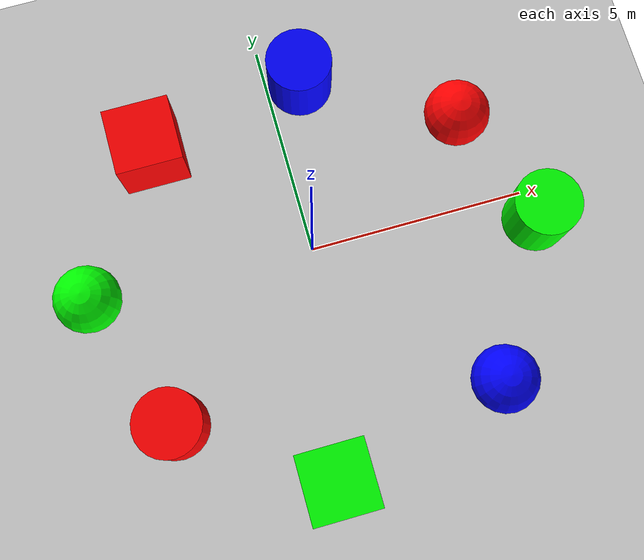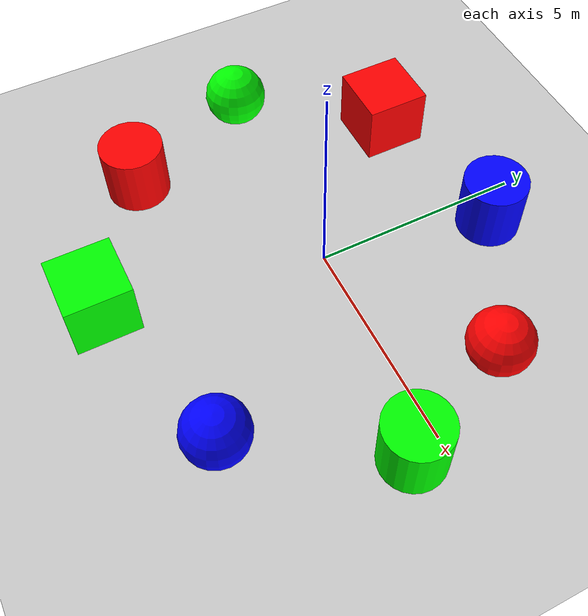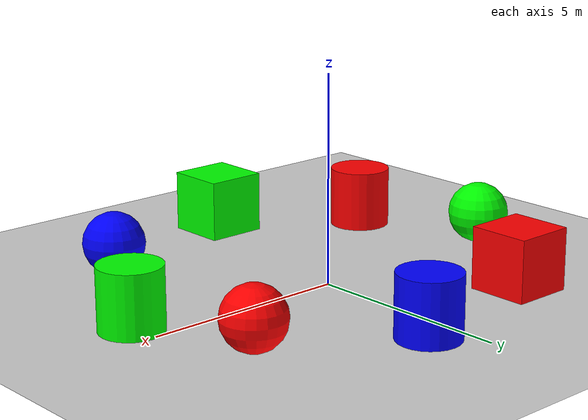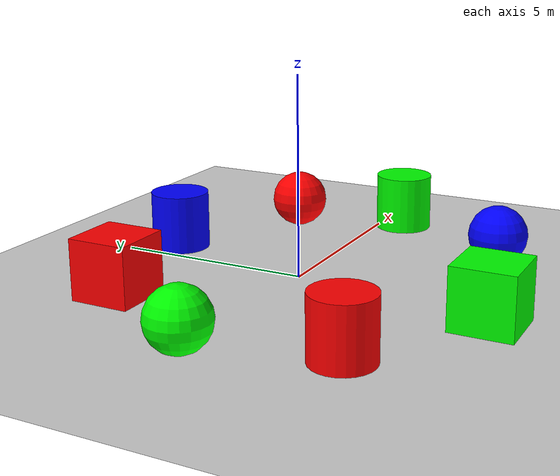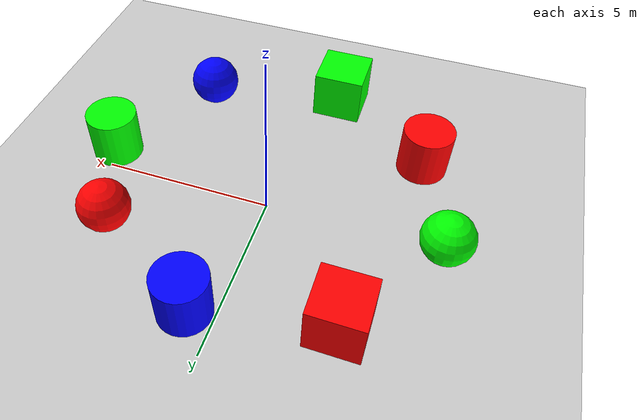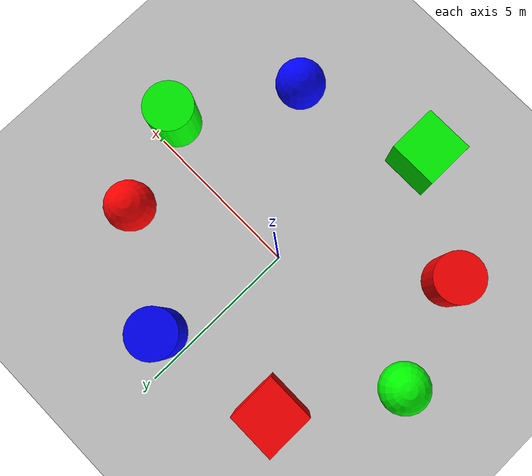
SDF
<sdf version="1.60">
 <world name="default">
  <light name="sun" type="directional">
   <cast_shadows>0</cast_shadows>
   <pose>0 0 10 0 -0 0</pose>
   <diffuse>0.8 0.8 0.8 1</diffuse>
   <specular>0.2 0.2 0.2 1</specular>
   <attenuation>
    <range>1000</range>
    <constant>0.9</constant>
    <linear>0.01</linear>
    <quadratic>0.001</quadratic>
   </attenuation>
   <direction>-0.5 0.1 -0.9</direction>
  </light>
  <model name="ground_plane">
   <static>1</static>
   <link name="link">
    <collision name="collision">
     <geometry><plane><normal>0 0 1</normal><size>100 100</size></plane></geometry>
     <surface>
      <contact><collide_bitmask>65535</collide_bitmask></contact>
      <friction><ode><mu>100</mu><mu2>50</mu2></ode></friction>
     </surface>
    </collision>
    <visual name="visual">
     <cast_shadows>0</cast_shadows>
     <geometry><plane><normal>0 0 1</normal><size>100 100</size></plane></geometry>
     <material>
      <script><uri>file://media/materials/scripts/gazebo.material</uri><name>Gazebo/Grey</name></script>
     </material>
    </visual>
   </link>
  </model>
  <gravity>0 0 -9.8</gravity>
  <magnetic_field>6e-06 2.3e-05 -4.2e-05</magnetic_field>
  <atmosphere type="adiabatic"/>
  <physics name="default_physics" default="0" type="ode">
   <max_step_size>0.001</max_step_size>
   <real_time_factor>1</real_time_factor>
   <real_time_update_rate>1000</real_time_update_rate>
  </physics>
  <scene><ambient>0.7 0.7 0.7 1</ambient><background>0.3 0.3 0.3 1</background><shadows>0</shadows></scene>
  <audio><device>default</device></audio>
  <spherical_coordinates>
   <surface_model>EARTH_WGS84</surface_model>
   <latitude_deg>0</latitude_deg>
   <longitude_deg>0</longitude_deg>
   <elevation>0</elevation>
   <heading_deg>0</heading_deg>
  </spherical_coordinates>
  <model name="cilindro_azul">
   <link name="link">
    <inertial>
     <mass>1</mass>
     <inertia><ixx>0.145833</ixx><ixy>0</ixy><ixz>0</ixz><iyy>0.145833</iyy><iyz>0</iyz><izz>0.125</izz></inertia>
    </inertial>
    <visual name="visual">
     <geometry><cylinder><radius>0.75</radius><length>1.5</length></cylinder></geometry>
     <material>
      <script><name>Gazebo/Grey</name><uri>file://media/materials/scripts/gazebo.material</uri></script>
      <shader type="vertex"><normal_map>__default__</normal_map></shader>
      <ambient>0 0 1 1</ambient>
      <diffuse>0 0 1 1</diffuse>
      <specular>0 0 1 1</specular>
      <emissive>0 0 0 1</emissive>
     </material>
    </visual>
    <collision name="collision">
     <geometry><cylinder><radius>0.75</radius><length>1.5</length></cylinder></geometry>
     <surface>
      <friction>
       <ode><mu>1</mu><mu2>1</mu2><fdir1>0 0 0</fdir1><slip1>0</slip1><slip2>0</slip2></ode>
       <torsional>
        <coefficient>1</coefficient>
        <patch_radius>0</patch_radius>
        <surface_radius>0</surface_radius>
        <use_patch_radius>1</use_patch_radius>
        <ode><slip>0</slip></ode>
       </torsional>
      </friction>
      <bounce><restitution_coefficient>0</restitution_coefficient><threshold>1e+06</threshold></bounce>
      <contact>
       <collide_without_contact>0</collide_without_contact>
       <collide_without_contact_bitmask>1</collide_without_contact_bitmask>
       <collide_bitmask>1</collide_bitmask>
       <ode>
        <soft_cfm>0</soft_cfm>
        <soft_erp>0.2</soft_erp>
        <kp>1e+13</kp>
        <kd>1</kd>
        <max_vel>0.01</max_vel>
        <min_depth>0</min_depth>
       </ode>
       <bullet>
        <split_impulse>1</split_impulse>
        <split_impulse_penetration_threshold>-0.01</split_impulse_penetration_threshold>
        <soft_cfm>0</soft_cfm>
        <soft_erp>0.2</soft_erp>
        <kp>1e+13</kp>
        <kd>1</kd>
       </bullet>
      </contact>
     </surface>
    </collision>
   </link>
   <static>0</static>
   <pose>0.79438 3.95282 0.749992 -2e-06 -2e-06 0</pose>
  </model>
  <model name="bola">
   <link name="link">
    <inertial>
     <mass>1</mass>
     <inertia><ixx>0.1</ixx><ixy>0</ixy><ixz>0</ixz><iyy>0.1</iyy><iyz>0</iyz><izz>0.1</izz></inertia>
    </inertial>
    <visual name="visual">
     <geometry><sphere><radius>0.75</radius></sphere></geometry>
     <material>
      <script><name>Gazebo/Grey</name><uri>file://media/materials/scripts/gazebo.material</uri></script>
      <shader type="vertex"><normal_map>__default__</normal_map></shader>
      <ambient>1 0 0 1</ambient>
      <diffuse>1 0 0 1</diffuse>
      <specular>1 0 0 1</specular>
      <emissive>0 0 0 1</emissive>
     </material>
    </visual>
    <collision name="collision">
     <geometry><sphere><radius>0.75</radius></sphere></geometry>
     <surface>
      <friction>
       <ode><mu>1</mu><mu2>1</mu2><fdir1>0 0 0</fdir1><slip1>0</slip1><slip2>0</slip2></ode>
       <torsional>
        <coefficient>1</coefficient>
        <patch_radius>0</patch_radius>
        <surface_radius>0</surface_radius>
        <use_patch_radius>1</use_patch_radius>
        <ode><slip>0</slip></ode>
       </torsional>
      </friction>
      <bounce><restitution_coefficient>0</restitution_coefficient><threshold>1e+06</threshold></bounce>
      <contact>
       <collide_without_contact>0</collide_without_contact>
       <collide_without_contact_bitmask>1</collide_without_contact_bitmask>
       <collide_bitmask>1</collide_bitmask>
       <ode>
        <soft_cfm>0</soft_cfm>
        <soft_erp>0.2</soft_erp>
        <kp>1e+13</kp>
        <kd>1</kd>
        <max_vel>0.01</max_vel>
        <min_depth>0</min_depth>
       </ode>
       <bullet>
        <split_impulse>1</split_impulse>
        <split_impulse_penetration_threshold>-0.01</split_impulse_penetration_threshold>
        <soft_cfm>0</soft_cfm>
        <soft_erp>0.2</soft_erp>
        <kp>1e+13</kp>
        <kd>1</kd>
       </bullet>
      </contact>
     </surface>
    </collision>
   </link>
   <static>0</static>
   <pose>4.00372 2.03942 0.75 0 -0 0</pose>
  </model>
  <model name="bola_azul">
   <link name="link">
    <inertial>
     <mass>1</mass>
     <inertia><ixx>0.1</ixx><ixy>0</ixy><ixz>0</ixz><iyy>0.1</iyy><iyz>0</iyz><izz>0.1</izz></inertia>
    </inertial>
    <visual name="visual">
     <geometry><sphere><radius>0.75</radius></sphere></geometry>
     <material>
      <script><name>Gazebo/Grey</name><uri>file://media/materials/scripts/gazebo.material</uri></script>
      <shader type="vertex"><normal_map>__default__</normal_map></shader>
      <ambient>0 1 0 1</ambient>
      <diffuse>0 1 0 1</diffuse>
      <specular>0 1 0 1</specular>
      <emissive>0 0 0 1</emissive>
     </material>
    </visual>
    <collision name="collision">
     <geometry><sphere><radius>0.75</radius></sphere></geometry>
     <surface>
      <friction>
       <ode><mu>1</mu><mu2>1</mu2><fdir1>0 0 0</fdir1><slip1>0</slip1><slip2>0</slip2></ode>
       <torsional>
        <coefficient>1</coefficient>
        <patch_radius>0</patch_radius>
        <surface_radius>0</surface_radius>
        <use_patch_radius>1</use_patch_radius>
        <ode><slip>0</slip></ode>
       </torsional>
      </friction>
      <bounce><restitution_coefficient>0</restitution_coefficient><threshold>1e+06</threshold></bounce>
      <contact>
       <collide_without_contact>0</collide_without_contact>
       <collide_without_contact_bitmask>1</collide_without_contact_bitmask>
       <collide_bitmask>1</collide_bitmask>
       <ode>
        <soft_cfm>0</soft_cfm>
        <soft_erp>0.2</soft_erp>
        <kp>1e+13</kp>
        <kd>1</kd>
        <max_vel>0.01</max_vel>
        <min_depth>0</min_depth>
       </ode>
       <bullet>
        <split_impulse>1</split_impulse>
        <split_impulse_penetration_threshold>-0.01</split_impulse_penetration_threshold>
        <soft_cfm>0</soft_cfm>
        <soft_erp>0.2</soft_erp>
        <kp>1e+13</kp>
        <kd>1</kd>
       </bullet>
      </contact>
     </surface>
    </collision>
   </link>
   <static>0</static>
   <pose>-5.08432 0.094569 0.75 0 -0 0</pose>
  </model>
  <model name="cubo">
   <link name="link">
    <inertial>
     <mass>1</mass>
     <inertia>
      <ixx>0.166667</ixx>
      <ixy>0</ixy>
      <ixz>0</ixz>
      <iyy>0.166667</iyy>
      <iyz>0</iyz>
      <izz>0.166667</izz>
     </inertia>
    </inertial>
    <visual name="visual">
     <geometry><box><size>1.5 1.5 1.5</size></box></geometry>
     <material>
      <script><name>Gazebo/Grey</name><uri>file://media/materials/scripts/gazebo.material</uri></script>
      <shader type="vertex"><normal_map>__default__</normal_map></shader>
      <ambient>1 0 0 1</ambient>
      <diffuse>1 0 0 1</diffuse>
      <specular>1 0 0 1</specular>
      <emissive>0 0 0 1</emissive>
     </material>
    </visual>
    <collision name="collision">
     <geometry><box><size>1.5 1.5 1.5</size></box></geometry>
     <surface>
      <friction>
       <ode><mu>1</mu><mu2>1</mu2><fdir1>0 0 0</fdir1><slip1>0</slip1><slip2>0</slip2></ode>
       <torsional>
        <coefficient>1</coefficient>
        <patch_radius>0</patch_radius>
        <surface_radius>0</surface_radius>
        <use_patch_radius>1</use_patch_radius>
        <ode><slip>0</slip></ode>
       </torsional>
      </friction>
      <bounce><restitution_coefficient>0</restitution_coefficient><threshold>1e+06</threshold></bounce>
      <contact>
       <collide_without_contact>0</collide_without_contact>
       <collide_without_contact_bitmask>1</collide_without_contact_bitmask>
       <collide_bitmask>1</collide_bitmask>
       <ode>
        <soft_cfm>0</soft_cfm>
        <soft_erp>0.2</soft_erp>
        <kp>1e+13</kp>
        <kd>1</kd>
        <max_vel>0.01</max_vel>
        <min_depth>0</min_depth>
       </ode>
       <bullet>
        <split_impulse>1</split_impulse>
        <split_impulse_penetration_threshold>-0.01</split_impulse_penetration_threshold>
        <soft_cfm>0</soft_cfm>
        <soft_erp>0.2</soft_erp>
        <kp>1e+13</kp>
        <kd>1</kd>
       </bullet>
      </contact>
     </surface>
    </collision>
   </link>
   <static>0</static>
   <pose>-2.99651 3.18953 0.75 -0 -0 -0</pose>
  </model>
  <model name="cilindro">
   <link name="link">
    <inertial>
     <mass>1</mass>
     <inertia><ixx>0.145833</ixx><ixy>0</ixy><ixz>0</ixz><iyy>0.145833</iyy><iyz>0</iyz><izz>0.125</izz></inertia>
    </inertial>
    <visual name="visual">
     <geometry><cylinder><radius>0.75</radius><length>1.5</length></cylinder></geometry>
     <material>
      <script><name>Gazebo/Grey</name><uri>file://media/materials/scripts/gazebo.material</uri></script>
      <shader type="vertex"><normal_map>__default__</normal_map></shader>
      <ambient>1 0 0 1</ambient>
      <diffuse>1 0 0 1</diffuse>
      <specular>1 0 0 1</specular>
      <emissive>0 0 0 1</emissive>
     </material>
    </visual>
    <collision name="collision">
     <geometry><cylinder><radius>0.75</radius><length>1.5</length></cylinder></geometry>
     <surface>
      <friction>
       <ode><mu>1</mu><mu2>1</mu2><fdir1>0 0 0</fdir1><slip1>0</slip1><slip2>0</slip2></ode>
       <torsional>
        <coefficient>1</coefficient>
        <patch_radius>0</patch_radius>
        <surface_radius>0</surface_radius>
        <use_patch_radius>1</use_patch_radius>
        <ode><slip>0</slip></ode>
       </torsional>
      </friction>
      <bounce><restitution_coefficient>0</restitution_coefficient><threshold>1e+06</threshold></bounce>
      <contact>
       <collide_without_contact>0</collide_without_contact>
       <collide_without_contact_bitmask>1</collide_without_contact_bitmask>
       <collide_bitmask>1</collide_bitmask>
       <ode>
        <soft_cfm>0</soft_cfm>
        <soft_erp>0.2</soft_erp>
        <kp>1e+13</kp>
        <kd>1</kd>
        <max_vel>0.01</max_vel>
        <min_depth>0</min_depth>
       </ode>
       <bullet>
        <split_impulse>1</split_impulse>
        <split_impulse_penetration_threshold>-0.01</split_impulse_penetration_threshold>
        <soft_cfm>0</soft_cfm>
        <soft_erp>0.2</soft_erp>
        <kp>1e+13</kp>
        <kd>1</kd>
       </bullet>
      </contact>
     </surface>
    </collision>
   </link>
   <static>0</static>
   <pose>-3.95277 -3.03507 0.749991 -1e-06 -1e-06 1e-06</pose>
  </model>
  <model name="cubo_verde">
   <link name="link">
    <inertial>
     <mass>1</mass>
     <inertia>
      <ixx>0.166667</ixx>
      <ixy>0</ixy>
      <ixz>0</ixz>
      <iyy>0.166667</iyy>
      <iyz>0</iyz>
      <izz>0.166667</izz>
     </inertia>
    </inertial>
    <visual name="visual">
     <geometry><box><size>1.5 1.5 1.5</size></box></geometry>
     <material>
      <script><name>Gazebo/Grey</name><uri>file://media/materials/scripts/gazebo.material</uri></script>
      <shader type="vertex"><normal_map>__default__</normal_map></shader>
      <ambient>0 1 0 1</ambient>
      <diffuse>0 1 0 1</diffuse>
      <specular>0 1 0 1</specular>
      <emissive>0 0 0 1</emissive>
     </material>
    </visual>
    <collision name="collision">
     <geometry><box><size>1.5 1.5 1.5</size></box></geometry>
     <surface>
      <friction>
       <ode><mu>1</mu><mu2>1</mu2><fdir1>0 0 0</fdir1><slip1>0</slip1><slip2>0</slip2></ode>
       <torsional>
        <coefficient>1</coefficient>
        <patch_radius>0</patch_radius>
        <surface_radius>0</surface_radius>
        <use_patch_radius>1</use_patch_radius>
        <ode><slip>0</slip></ode>
       </torsional>
      </friction>
      <bounce><restitution_coefficient>0</restitution_coefficient><threshold>1e+06</threshold></bounce>
      <contact>
       <collide_without_contact>0</collide_without_contact>
       <collide_without_contact_bitmask>1</collide_without_contact_bitmask>
       <collide_bitmask>1</collide_bitmask>
       <ode>
        <soft_cfm>0</soft_cfm>
        <soft_erp>0.2</soft_erp>
        <kp>1e+13</kp>
        <kd>1</kd>
        <max_vel>0.01</max_vel>
        <min_depth>0</min_depth>
       </ode>
       <bullet>
        <split_impulse>1</split_impulse>
        <split_impulse_penetration_threshold>-0.01</split_impulse_penetration_threshold>
        <soft_cfm>0</soft_cfm>
        <soft_erp>0.2</soft_erp>
        <kp>1e+13</kp>
        <kd>1</kd>
       </bullet>
      </contact>
     </surface>
    </collision>
   </link>
   <static>0</static>
   <pose>-0.877007 -5.11528 0.75 -0 -0 -0</pose>
  </model>
  <model name="bola_azul_0">
   <link name="link">
    <inertial>
     <mass>1</mass>
     <inertia><ixx>0.1</ixx><ixy>0</ixy><ixz>0</ixz><iyy>0.1</iyy><iyz>0</iyz><izz>0.1</izz></inertia>
    </inertial>
    <visual name="visual">
     <geometry><sphere><radius>0.75</radius></sphere></geometry>
     <material>
      <script><name>Gazebo/Grey</name><uri>file://media/materials/scripts/gazebo.material</uri></script>
      <shader type="vertex"><normal_map>__default__</normal_map></shader>
      <ambient>0 0 1 1</ambient>
      <diffuse>0 0 1 1</diffuse>
      <specular>0 0 1 1</specular>
      <emissive>0 0 0 1</emissive>
     </material>
    </visual>
    <collision name="collision">
     <geometry><sphere><radius>0.75</radius></sphere></geometry>
     <surface>
      <friction>
       <ode><mu>1</mu><mu2>1</mu2><fdir1>0 0 0</fdir1><slip1>0</slip1><slip2>0</slip2></ode>
       <torsional>
        <coefficient>1</coefficient>
        <patch_radius>0</patch_radius>
        <surface_radius>0</surface_radius>
        <use_patch_radius>1</use_patch_radius>
        <ode><slip>0</slip></ode>
       </torsional>
      </friction>
      <bounce><restitution_coefficient>0</restitution_coefficient><threshold>1e+06</threshold></bounce>
      <contact>
       <collide_without_contact>0</collide_without_contact>
       <collide_without_contact_bitmask>1</collide_without_contact_bitmask>
       <collide_bitmask>1</collide_bitmask>
       <ode>
        <soft_cfm>0</soft_cfm>
        <soft_erp>0.2</soft_erp>
        <kp>1e+13</kp>
        <kd>1</kd>
        <max_vel>0.01</max_vel>
        <min_depth>0</min_depth>
       </ode>
       <bullet>
        <split_impulse>1</split_impulse>
        <split_impulse_penetration_threshold>-0.01</split_impulse_penetration_threshold>
        <soft_cfm>0</soft_cfm>
        <soft_erp>0.2</soft_erp>
        <kp>1e+13</kp>
        <kd>1</kd>
       </bullet>
      </contact>
     </surface>
    </collision>
   </link>
   <static>0</static>
   <pose>3.18178 -4.02896 0.75 0 -0 0</pose>
  </model>
  <model name="cilindro_verde">
   <link name="link">
    <inertial>
     <mass>1</mass>
     <inertia><ixx>0.145833</ixx><ixy>0</ixy><ixz>0</ixz><iyy>0.145833</iyy><iyz>0</iyz><izz>0.125</izz></inertia>
    </inertial>
    <visual name="visual">
     <geometry><cylinder><radius>0.75</radius><length>1.5</length></cylinder></geometry>
     <material>
      <script><name>Gazebo/Grey</name><uri>file://media/materials/scripts/gazebo.material</uri></script>
      <shader type="vertex"><normal_map>__default__</normal_map></shader>
      <ambient>0 1 0 1</ambient>
      <diffuse>0 1 0 1</diffuse>
      <specular>0 1 0 1</specular>
      <emissive>0 0 0 1</emissive>
     </material>
    </visual>
    <collision name="collision">
     <geometry><cylinder><radius>0.75</radius><length>1.5</length></cylinder></geometry>
     <surface>
      <friction>
       <ode><mu>1</mu><mu2>1</mu2><fdir1>0 0 0</fdir1><slip1>0</slip1><slip2>0</slip2></ode>
       <torsional>
        <coefficient>1</coefficient>
        <patch_radius>0</patch_radius>
        <surface_radius>0</surface_radius>
        <use_patch_radius>1</use_patch_radius>
        <ode><slip>0</slip></ode>
       </torsional>
      </friction>
      <bounce><restitution_coefficient>0</restitution_coefficient><threshold>1e+06</threshold></bounce>
      <contact>
       <collide_without_contact>0</collide_without_contact>
       <collide_without_contact_bitmask>1</collide_without_contact_bitmask>
       <collide_bitmask>1</collide_bitmask>
       <ode>
        <soft_cfm>0</soft_cfm>
        <soft_erp>0.2</soft_erp>
        <kp>1e+13</kp>
        <kd>1</kd>
        <max_vel>0.01</max_vel>
        <min_depth>0</min_depth>
       </ode>
       <bullet>
        <split_impulse>1</split_impulse>
        <split_impulse_penetration_threshold>-0.01</split_impulse_penetration_threshold>
        <soft_cfm>0</soft_cfm>
        <soft_erp>0.2</soft_erp>
        <kp>1e+13</kp>
        <kd>1</kd>
       </bullet>
      </contact>
     </surface>
    </collision>
   </link>
   <static>0</static>
   <pose>5.12573 -0.687986 0.749998 3e-06 3e-06 1e-06</pose>
  </model>
 </world>
</sdf>
